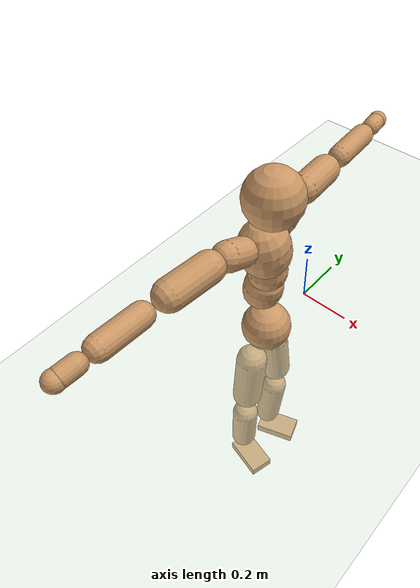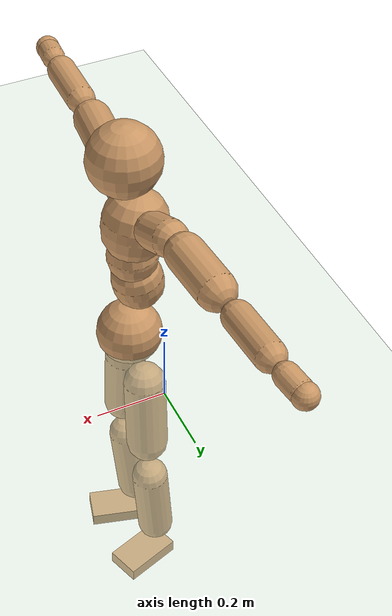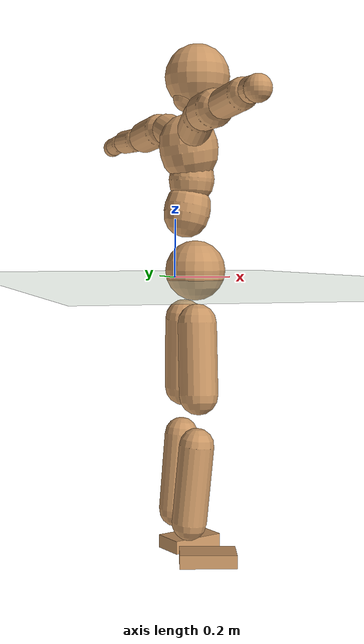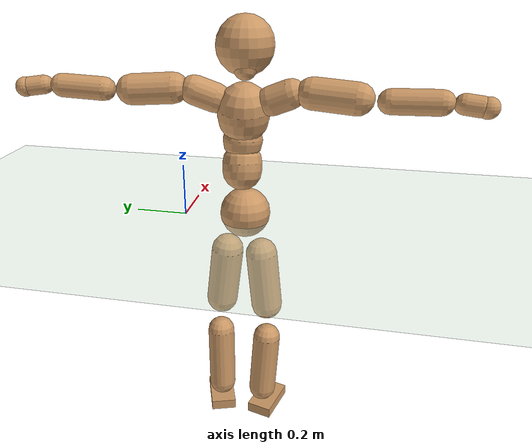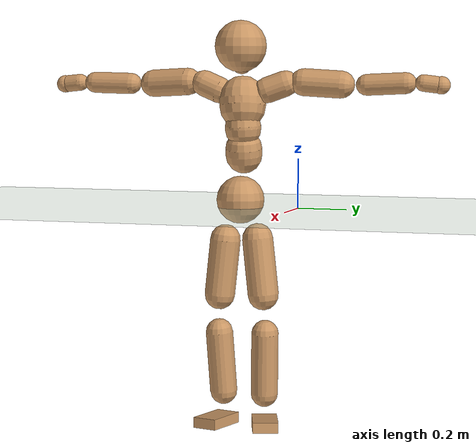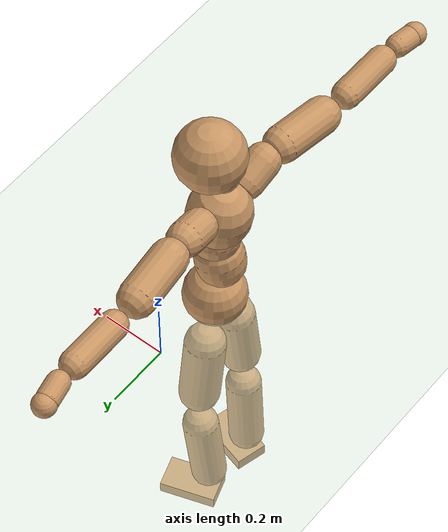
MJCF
<mujoco model="humanoid">
  <compiler coordinate="local"/>
  <default>
    <joint damping="0.0" armature="0.01" stiffness="0.0" limited="true"/>
    <geom conaffinity="1" condim="3" contype="7" margin="0.001" rgba="0.8 0.6 .4 1"/>
  </default>
  <asset>
    <texture type="skybox" builtin="gradient" rgb1=".4 .5 .6" rgb2="0 0 0" width="100" height="100"/>
    <texture builtin="flat" height="1278" mark="cross" markrgb="1 1 1" name="texgeom" random="0.01" rgb1="0.8 0.6 0.4" rgb2="0.8 0.6 0.4" type="cube" width="127"/>
    <texture builtin="checker" height="100" name="texplane" rgb1="0 0 0" rgb2="0.8 0.8 0.8" type="2d" width="100"/>
    <material name="MatPlane" reflectance="0.5" shininess="1" specular="1" texrepeat="60 60" texture="texplane"/>
    <material name="geom" texture="texgeom" texuniform="true"/>
  </asset>
  <worldbody>
    <light cutoff="100" diffuse="1 1 1" dir="-0 0 -1.3" directional="true" exponent="1" pos="0 0 1.3" specular=".1 .1 .1"/>
    <geom conaffinity="1" condim="3" name="floor" pos="0 0 0" rgba="0.8 0.9 0.8 1" size="100 100 .2" type="plane" material="MatPlane"/>
    <body name="Pelvis" pos="-0.0024 -0.2434 0.0287">
      <freejoint name="Pelvis"/>
      <geom type="sphere" contype="1" conaffinity="1" density="500" size="0.0970" pos="0.0000 0.0000 0.0000" name="Pelvis"/>
      <body name="L_Hip" pos="-0.018 0.0591 -0.0824">
        <joint name="L_Hip_x" type="hinge" pos="0 0 0" axis="1 0 0" stiffness="800" damping="80" armature="0.02" range="-180.0000 180.0000"/>
        <joint name="L_Hip_y" type="hinge" pos="0 0 0" axis="0 1 0" stiffness="800" damping="80" armature="0.02" range="-180.0000 180.0000"/>
        <joint name="L_Hip_z" type="hinge" pos="0 0 0" axis="0 0 1" stiffness="800" damping="80" armature="0.02" range="-180.0000 180.0000"/>
        <geom type="capsule" contype="1" conaffinity="1" density="500" fromto="0.0017 0.0086 -0.0764 0.0067 0.0344 -0.3058" size="0.0628" name="L_Hip"/>
        <body name="L_Knee" pos="0.0083 0.043 -0.3822">
          <joint name="L_Knee_x" type="hinge" pos="0 0 0" axis="1 0 0" stiffness="800" damping="80" armature="0.02" range="-180.0000 180.0000"/>
          <joint name="L_Knee_y" type="hinge" pos="0 0 0" axis="0 1 0" stiffness="800" damping="80" armature="0.02" range="-180.0000 180.0000"/>
          <joint name="L_Knee_z" type="hinge" pos="0 0 0" axis="0 0 1" stiffness="800" damping="80" armature="0.02" range="-180.0000 180.0000"/>
          <geom type="capsule" contype="1" conaffinity="1" density="500" fromto="-0.0075 -0.0030 -0.0843 -0.0300 -0.0118 -0.3373" size="0.0556" name="L_Knee"/>
          <body name="L_Ankle" pos="-0.0374 -0.0148 -0.4216">
            <joint name="L_Ankle_x" type="hinge" pos="0 0 0" axis="1 0 0" stiffness="800" damping="80" armature="0.02" range="-180.0000 180.0000"/>
            <joint name="L_Ankle_y" type="hinge" pos="0 0 0" axis="0 1 0" stiffness="800" damping="80" armature="0.02" range="-180.0000 180.0000"/>
            <joint name="L_Ankle_z" type="hinge" pos="0 0 0" axis="0 0 1" stiffness="800" damping="80" armature="0.02" range="-180.0000 180.0000"/>
            <geom type="box" contype="1" conaffinity="1" density="500" pos="0.0609 0.0203 -0.0299" size="0.089 0.052 0.0215" quat="0.9871 0.0000 0.0000 0.1602" name="L_Ankle"/>
            <body name="L_Toe" pos="0.1218 0.0406 -0.0599">
              <joint name="L_Toe_x" type="hinge" pos="0 0 0" axis="1 0 0" stiffness="500" damping="50" armature="0.02" range="-180.0000 180.0000"/>
              <joint name="L_Toe_y" type="hinge" pos="0 0 0" axis="0 1 0" stiffness="500" damping="50" armature="0.02" range="-180.0000 180.0000"/>
              <joint name="L_Toe_z" type="hinge" pos="0 0 0" axis="0 0 1" stiffness="500" damping="50" armature="0.02" range="-180.0000 180.0000"/>
              <geom type="box" contype="1" conaffinity="1" density="500" pos="0.0000 0.0000 0.0290" size="0.0011 0.0025 0.001" quat="0.9863 0.0000 0.0000 0.1650" name="L_Toe"/>
            </body>
          </body>
        </body>
      </body>
      <body name="R_Hip" pos="-0.0139 -0.0608 -0.0905">
        <joint name="R_Hip_x" type="hinge" pos="0 0 0" axis="1 0 0" stiffness="800" damping="80" armature="0.02" range="-180.0000 180.0000"/>
        <joint name="R_Hip_y" type="hinge" pos="0 0 0" axis="0 1 0" stiffness="800" damping="80" armature="0.02" range="-180.0000 180.0000"/>
        <joint name="R_Hip_z" type="hinge" pos="0 0 0" axis="0 0 1" stiffness="800" damping="80" armature="0.02" range="-180.0000 180.0000"/>
        <geom type="capsule" contype="1" conaffinity="1" density="500" fromto="-0.0009 -0.0085 -0.0758 -0.0037 -0.0340 -0.3034" size="0.0622" name="R_Hip"/>
        <body name="R_Knee" pos="-0.0046 -0.0424 -0.3792">
          <joint name="R_Knee_x" type="hinge" pos="0 0 0" axis="1 0 0" stiffness="800" damping="80" armature="0.02" range="-180.0000 180.0000"/>
          <joint name="R_Knee_y" type="hinge" pos="0 0 0" axis="0 1 0" stiffness="800" damping="80" armature="0.02" range="-180.0000 180.0000"/>
          <joint name="R_Knee_z" type="hinge" pos="0 0 0" axis="0 0 1" stiffness="800" damping="80" armature="0.02" range="-180.0000 180.0000"/>
          <geom type="capsule" contype="1" conaffinity="1" density="500" fromto="-0.0070 0.0038 -0.0829 -0.0279 0.0152 -0.3316" size="0.0558" name="R_Knee"/>
          <body name="R_Ankle" pos="-0.0348 0.019 -0.4145">
            <joint name="R_Ankle_x" type="hinge" pos="0 0 0" axis="1 0 0" stiffness="800" damping="80" armature="0.02" range="-180.0000 180.0000"/>
            <joint name="R_Ankle_y" type="hinge" pos="0 0 0" axis="0 1 0" stiffness="800" damping="80" armature="0.02" range="-180.0000 180.0000"/>
            <joint name="R_Ankle_z" type="hinge" pos="0 0 0" axis="0 0 1" stiffness="800" damping="80" armature="0.02" range="-180.0000 180.0000"/>
            <geom type="box" contype="1" conaffinity="1" density="500" pos="0.0651 -0.0174 -0.0305" size="0.0908 0.0513 0.0218" quat="0.9915 0.0000 0.0000 -0.1304" name="R_Ankle"/>
            <body name="R_Toe" pos="0.1303 -0.0349 -0.0611">
              <joint name="R_Toe_x" type="hinge" pos="0 0 0" axis="1 0 0" stiffness="500" damping="50" armature="0.02" range="-180.0000 180.0000"/>
              <joint name="R_Toe_y" type="hinge" pos="0 0 0" axis="0 1 0" stiffness="500" damping="50" armature="0.02" range="-180.0000 180.0000"/>
              <joint name="R_Toe_z" type="hinge" pos="0 0 0" axis="0 0 1" stiffness="500" damping="50" armature="0.02" range="-180.0000 180.0000"/>
              <geom type="box" contype="1" conaffinity="1" density="500" pos="0.0000 0.0000 0.0304" size="0.0011 0.0025 0.0011" quat="0.9926 0.0000 0.0000 -0.1215" name="R_Toe"/>
            </body>
          </body>
        </body>
      </body>
      <body name="Torso" pos="-0.0389 0.0043 0.1245">
        <joint name="Torso_x" type="hinge" pos="0 0 0" axis="1 0 0" stiffness="1000" damping="100" armature="0.02" range="-180.0000 180.0000"/>
        <joint name="Torso_y" type="hinge" pos="0 0 0" axis="0 1 0" stiffness="1000" damping="100" armature="0.02" range="-180.0000 180.0000"/>
        <joint name="Torso_z" type="hinge" pos="0 0 0" axis="0 0 1" stiffness="1000" damping="100" armature="0.02" range="-180.0000 180.0000"/>
        <geom type="capsule" contype="1" conaffinity="1" density="500" fromto="0.0162 0.0027 0.0836 0.0108 0.0018 0.0558" size="0.074493" name="Torso"/>
        <body name="Spine" pos="0.027 0.0046 0.1394">
          <joint name="Spine_x" type="hinge" pos="0 0 0" axis="1 0 0" stiffness="1000" damping="100" armature="0.02" range="-180.0000 180.0000"/>
          <joint name="Spine_y" type="hinge" pos="0 0 0" axis="0 1 0" stiffness="1000" damping="100" armature="0.02" range="-180.0000 180.0000"/>
          <joint name="Spine_z" type="hinge" pos="0 0 0" axis="0 0 1" stiffness="1000" damping="100" armature="0.02" range="-180.0000 180.0000"/>
          <geom type="capsule" contype="1" conaffinity="1" density="500" fromto="0.0019 -0.0013 0.0341 0.0013 -0.0009 0.0227" size="0.07347" name="Spine"/>
          <body name="Chest" pos="0.0032 -0.0021 0.0568">
            <joint name="Chest_x" type="hinge" pos="0 0 0" axis="1 0 0" stiffness="1000" damping="100" armature="0.02" range="-180.0000 180.0000"/>
            <joint name="Chest_y" type="hinge" pos="0 0 0" axis="0 1 0" stiffness="1000" damping="100" armature="0.02" range="-180.0000 180.0000"/>
            <joint name="Chest_z" type="hinge" pos="0 0 0" axis="0 0 1" stiffness="1000" damping="100" armature="0.02" range="-180.0000 180.0000"/>
            <geom type="capsule" contype="1" conaffinity="1" density="500" fromto="-0.0152 -0.0048 0.0875 -0.0101 -0.0032 0.0583" size="0.094395" name="Chest"/>
            <body name="Neck" pos="-0.0339 -0.0132 0.2115">
              <joint name="Neck_x" type="hinge" pos="0 0 0" axis="1 0 0" stiffness="500" damping="50" armature="0.02" range="-180.0000 180.0000"/>
              <joint name="Neck_y" type="hinge" pos="0 0 0" axis="0 1 0" stiffness="500" damping="50" armature="0.02" range="-180.0000 180.0000"/>
              <joint name="Neck_z" type="hinge" pos="0 0 0" axis="0 0 1" stiffness="500" damping="50" armature="0.02" range="-180.0000 180.0000"/>
              <geom type="capsule" contype="1" conaffinity="1" density="500" fromto="0.0100 0.0020 0.0177 0.0399 0.0082 0.0709" size="0.042222" name="Neck"/>
              <body name="Head" pos="0.0499 0.0102 0.0886">
                <joint name="Head_x" type="hinge" pos="0 0 0" axis="1 0 0" stiffness="500" damping="50" armature="0.02" range="-180.0000 180.0000"/>
                <joint name="Head_y" type="hinge" pos="0 0 0" axis="0 1 0" stiffness="500" damping="50" armature="0.02" range="-180.0000 180.0000"/>
                <joint name="Head_z" type="hinge" pos="0 0 0" axis="0 0 1" stiffness="500" damping="50" armature="0.02" range="-180.0000 180.0000"/>
                <geom type="sphere" contype="1" conaffinity="1" density="500" size="0.1047" pos="0.0000 0.0000 0.0000" name="Head"/>
              </body>
            </body>
            <body name="L_Thorax" pos="-0.0185 0.0713 0.1139">
              <joint name="L_Thorax_x" type="hinge" pos="0 0 0" axis="1 0 0" stiffness="500" damping="50" armature="0.02" range="-180.0000 180.0000"/>
              <joint name="L_Thorax_y" type="hinge" pos="0 0 0" axis="0 1 0" stiffness="500" damping="50" armature="0.02" range="-180.0000 180.0000"/>
              <joint name="L_Thorax_z" type="hinge" pos="0 0 0" axis="0 0 1" stiffness="500" damping="50" armature="0.02" range="-180.0000 180.0000"/>
              <geom type="capsule" contype="1" conaffinity="1" density="500" fromto="-0.0038 0.0246 0.0090 -0.0150 0.0982 0.0361" size="0.053" name="L_Thorax"/>
              <body name="L_Shoulder" pos="-0.0188 0.1228 0.0451">
                <joint name="L_Shoulder_x" type="hinge" pos="0 0 0" axis="1 0 0" stiffness="500" damping="50" armature="0.02" range="-720.0000 720.0000"/>
                <joint name="L_Shoulder_y" type="hinge" pos="0 0 0" axis="0 1 0" stiffness="500" damping="50" armature="0.02" range="-720.0000 720.0000"/>
                <joint name="L_Shoulder_z" type="hinge" pos="0 0 0" axis="0 0 1" stiffness="500" damping="50" armature="0.02" range="-720.0000 720.0000"/>
                <geom type="capsule" contype="1" conaffinity="1" density="500" fromto="-0.0046 0.0504 -0.0031 -0.0184 0.2015 -0.0123" size="0.0555" name="L_Shoulder"/>
                <body name="L_Elbow" pos="-0.023 0.2519 -0.0153">
                  <joint name="L_Elbow_x" type="hinge" pos="0 0 0" axis="1 0 0" stiffness="500" damping="50" armature="0.02" range="-720.0000 720.0000"/>
                  <joint name="L_Elbow_y" type="hinge" pos="0 0 0" axis="0 1 0" stiffness="500" damping="50" armature="0.02" range="-720.0000 720.0000"/>
                  <joint name="L_Elbow_z" type="hinge" pos="0 0 0" axis="0 0 1" stiffness="500" damping="50" armature="0.02" range="-720.0000 720.0000"/>
                  <geom type="capsule" contype="1" conaffinity="1" density="500" fromto="-0.0014 0.0528 0.0026 -0.0056 0.2112 0.0102" size="0.0428" name="L_Elbow"/>
                  <body name="L_Wrist" pos="-0.007 0.264 0.0128">
                    <joint name="L_Wrist_x" type="hinge" pos="0 0 0" axis="1 0 0" stiffness="300" damping="30" armature="0.02" range="-180.0000 180.0000"/>
                    <joint name="L_Wrist_y" type="hinge" pos="0 0 0" axis="0 1 0" stiffness="300" damping="30" armature="0.02" range="-180.0000 180.0000"/>
                    <joint name="L_Wrist_z" type="hinge" pos="0 0 0" axis="0 0 1" stiffness="300" damping="30" armature="0.02" range="-180.0000 180.0000"/>
                    <geom type="capsule" contype="1" conaffinity="1" density="500" fromto="-0.0031 0.0174 -0.0021 -0.0125 0.0695 -0.0086" size="0.0342" name="L_Wrist"/>
                    <body name="L_Hand" pos="-0.0156 0.0869 -0.0107">
                      <joint name="L_Hand_x" type="hinge" pos="0 0 0" axis="1 0 0" stiffness="300" damping="30" armature="0.02" range="-180.0000 180.0000"/>
                      <joint name="L_Hand_y" type="hinge" pos="0 0 0" axis="0 1 0" stiffness="300" damping="30" armature="0.02" range="-180.0000 180.0000"/>
                      <joint name="L_Hand_z" type="hinge" pos="0 0 0" axis="0 0 1" stiffness="300" damping="30" armature="0.02" range="-180.0000 180.0000"/>
                      <geom type="sphere" contype="1" conaffinity="1" density="500" size="0.0357" pos="0.0000 0.0000 0.0000" name="L_Hand"/>
                    </body>
                  </body>
                </body>
              </body>
            </body>
            <body name="R_Thorax" pos="-0.0237 -0.0824 0.1121">
              <joint name="R_Thorax_x" type="hinge" pos="0 0 0" axis="1 0 0" stiffness="500" damping="50" armature="0.02" range="-180.0000 180.0000"/>
              <joint name="R_Thorax_y" type="hinge" pos="0 0 0" axis="0 1 0" stiffness="500" damping="50" armature="0.02" range="-180.0000 180.0000"/>
              <joint name="R_Thorax_z" type="hinge" pos="0 0 0" axis="0 0 1" stiffness="500" damping="50" armature="0.02" range="-180.0000 180.0000"/>
              <geom type="capsule" contype="1" conaffinity="1" density="500" fromto="-0.0017 -0.0226 0.0093 -0.0067 -0.0905 0.0373" size="0.0531" name="R_Thorax"/>
              <body name="R_Shoulder" pos="-0.0084 -0.1132 0.0466">
                <joint name="R_Shoulder_x" type="hinge" pos="0 0 0" axis="1 0 0" stiffness="500" damping="50" armature="0.02" range="-720.0000 720.0000"/>
                <joint name="R_Shoulder_y" type="hinge" pos="0 0 0" axis="0 1 0" stiffness="500" damping="50" armature="0.02" range="-720.0000 720.0000"/>
                <joint name="R_Shoulder_z" type="hinge" pos="0 0 0" axis="0 0 1" stiffness="500" damping="50" armature="0.02" range="-720.0000 720.0000"/>
                <geom type="capsule" contype="1" conaffinity="1" density="500" fromto="-0.0064 -0.0514 -0.0028 -0.0254 -0.2057 -0.0112" size="0.0561" name="R_Shoulder"/>
                <body name="R_Elbow" pos="-0.0318 -0.2571 -0.0141">
                  <joint name="R_Elbow_x" type="hinge" pos="0 0 0" axis="1 0 0" stiffness="500" damping="50" armature="0.02" range="-720.0000 720.0000"/>
                  <joint name="R_Elbow_y" type="hinge" pos="0 0 0" axis="0 1 0" stiffness="500" damping="50" armature="0.02" range="-720.0000 720.0000"/>
                  <joint name="R_Elbow_z" type="hinge" pos="0 0 0" axis="0 0 1" stiffness="500" damping="50" armature="0.02" range="-720.0000 720.0000"/>
                  <geom type="capsule" contype="1" conaffinity="1" density="500" fromto="-0.0011 -0.0534 0.0012 -0.0045 -0.2135 0.0050" size="0.0434" name="R_Elbow"/>
                  <body name="R_Wrist" pos="-0.0057 -0.2669 0.0062">
                    <joint name="R_Wrist_x" type="hinge" pos="0 0 0" axis="1 0 0" stiffness="300" damping="30" armature="0.02" range="-180.0000 180.0000"/>
                    <joint name="R_Wrist_y" type="hinge" pos="0 0 0" axis="0 1 0" stiffness="300" damping="30" armature="0.02" range="-180.0000 180.0000"/>
                    <joint name="R_Wrist_z" type="hinge" pos="0 0 0" axis="0 0 1" stiffness="300" damping="30" armature="0.02" range="-180.0000 180.0000"/>
                    <geom type="capsule" contype="1" conaffinity="1" density="500" fromto="-0.0020 -0.0178 -0.0017 -0.0081 -0.0711 -0.0069" size="0.0349" name="R_Wrist"/>
                    <body name="R_Hand" pos="-0.0101 -0.0888 -0.0087">
                      <joint name="R_Hand_x" type="hinge" pos="0 0 0" axis="1 0 0" stiffness="300" damping="30" armature="0.02" range="-180.0000 180.0000"/>
                      <joint name="R_Hand_y" type="hinge" pos="0 0 0" axis="0 1 0" stiffness="300" damping="30" armature="0.02" range="-180.0000 180.0000"/>
                      <joint name="R_Hand_z" type="hinge" pos="0 0 0" axis="0 0 1" stiffness="300" damping="30" armature="0.02" range="-180.0000 180.0000"/>
                      <geom type="sphere" contype="1" conaffinity="1" density="500" size="0.0361" pos="0.0000 0.0000 0.0000" name="R_Hand"/>
                    </body>
                  </body>
                </body>
              </body>
            </body>
          </body>
        </body>
      </body>
    </body>
  </worldbody>
  <actuator>
    <motor name="L_Hip_x" joint="L_Hip_x" gear="500"/>
    <motor name="L_Hip_y" joint="L_Hip_y" gear="500"/>
    <motor name="L_Hip_z" joint="L_Hip_z" gear="500"/>
    <motor name="L_Knee_x" joint="L_Knee_x" gear="500"/>
    <motor name="L_Knee_y" joint="L_Knee_y" gear="500"/>
    <motor name="L_Knee_z" joint="L_Knee_z" gear="500"/>
    <motor name="L_Ankle_x" joint="L_Ankle_x" gear="500"/>
    <motor name="L_Ankle_y" joint="L_Ankle_y" gear="500"/>
    <motor name="L_Ankle_z" joint="L_Ankle_z" gear="500"/>
    <motor name="L_Toe_x" joint="L_Toe_x" gear="500"/>
    <motor name="L_Toe_y" joint="L_Toe_y" gear="500"/>
    <motor name="L_Toe_z" joint="L_Toe_z" gear="500"/>
    <motor name="R_Hip_x" joint="R_Hip_x" gear="500"/>
    <motor name="R_Hip_y" joint="R_Hip_y" gear="500"/>
    <motor name="R_Hip_z" joint="R_Hip_z" gear="500"/>
    <motor name="R_Knee_x" joint="R_Knee_x" gear="500"/>
    <motor name="R_Knee_y" joint="R_Knee_y" gear="500"/>
    <motor name="R_Knee_z" joint="R_Knee_z" gear="500"/>
    <motor name="R_Ankle_x" joint="R_Ankle_x" gear="500"/>
    <motor name="R_Ankle_y" joint="R_Ankle_y" gear="500"/>
    <motor name="R_Ankle_z" joint="R_Ankle_z" gear="500"/>
    <motor name="R_Toe_x" joint="R_Toe_x" gear="500"/>
    <motor name="R_Toe_y" joint="R_Toe_y" gear="500"/>
    <motor name="R_Toe_z" joint="R_Toe_z" gear="500"/>
    <motor name="Torso_x" joint="Torso_x" gear="500"/>
    <motor name="Torso_y" joint="Torso_y" gear="500"/>
    <motor name="Torso_z" joint="Torso_z" gear="500"/>
    <motor name="Spine_x" joint="Spine_x" gear="500"/>
    <motor name="Spine_y" joint="Spine_y" gear="500"/>
    <motor name="Spine_z" joint="Spine_z" gear="500"/>
    <motor name="Chest_x" joint="Chest_x" gear="500"/>
    <motor name="Chest_y" joint="Chest_y" gear="500"/>
    <motor name="Chest_z" joint="Chest_z" gear="500"/>
    <motor name="Neck_x" joint="Neck_x" gear="500"/>
    <motor name="Neck_y" joint="Neck_y" gear="500"/>
    <motor name="Neck_z" joint="Neck_z" gear="500"/>
    <motor name="Head_x" joint="Head_x" gear="500"/>
    <motor name="Head_y" joint="Head_y" gear="500"/>
    <motor name="Head_z" joint="Head_z" gear="500"/>
    <motor name="L_Thorax_x" joint="L_Thorax_x" gear="500"/>
    <motor name="L_Thorax_y" joint="L_Thorax_y" gear="500"/>
    <motor name="L_Thorax_z" joint="L_Thorax_z" gear="500"/>
    <motor name="L_Shoulder_x" joint="L_Shoulder_x" gear="500"/>
    <motor name="L_Shoulder_y" joint="L_Shoulder_y" gear="500"/>
    <motor name="L_Shoulder_z" joint="L_Shoulder_z" gear="500"/>
    <motor name="L_Elbow_x" joint="L_Elbow_x" gear="500"/>
    <motor name="L_Elbow_y" joint="L_Elbow_y" gear="500"/>
    <motor name="L_Elbow_z" joint="L_Elbow_z" gear="500"/>
    <motor name="L_Wrist_x" joint="L_Wrist_x" gear="500"/>
    <motor name="L_Wrist_y" joint="L_Wrist_y" gear="500"/>
    <motor name="L_Wrist_z" joint="L_Wrist_z" gear="500"/>
    <motor name="L_Hand_x" joint="L_Hand_x" gear="500"/>
    <motor name="L_Hand_y" joint="L_Hand_y" gear="500"/>
    <motor name="L_Hand_z" joint="L_Hand_z" gear="500"/>
    <motor name="R_Thorax_x" joint="R_Thorax_x" gear="500"/>
    <motor name="R_Thorax_y" joint="R_Thorax_y" gear="500"/>
    <motor name="R_Thorax_z" joint="R_Thorax_z" gear="500"/>
    <motor name="R_Shoulder_x" joint="R_Shoulder_x" gear="500"/>
    <motor name="R_Shoulder_y" joint="R_Shoulder_y" gear="500"/>
    <motor name="R_Shoulder_z" joint="R_Shoulder_z" gear="500"/>
    <motor name="R_Elbow_x" joint="R_Elbow_x" gear="500"/>
    <motor name="R_Elbow_y" joint="R_Elbow_y" gear="500"/>
    <motor name="R_Elbow_z" joint="R_Elbow_z" gear="500"/>
    <motor name="R_Wrist_x" joint="R_Wrist_x" gear="500"/>
    <motor name="R_Wrist_y" joint="R_Wrist_y" gear="500"/>
    <motor name="R_Wrist_z" joint="R_Wrist_z" gear="500"/>
    <motor name="R_Hand_x" joint="R_Hand_x" gear="500"/>
    <motor name="R_Hand_y" joint="R_Hand_y" gear="500"/>
    <motor name="R_Hand_z" joint="R_Hand_z" gear="500"/>
  </actuator>
  <contact>
    <exclude body1="Torso" body2="Chest"/>
    <exclude body1="Head" body2="Chest"/>
    <exclude body1="R_Knee" body2="R_Toe"/>
    <exclude body1="R_Knee" body2="L_Ankle"/>
    <exclude body1="R_Knee" body2="L_Toe"/>
    <exclude body1="L_Knee" body2="L_Toe"/>
    <exclude body1="L_Knee" body2="R_Ankle"/>
    <exclude body1="L_Knee" body2="R_Toe"/>
    <exclude body1="L_Shoulder" body2="Chest"/>
    <exclude body1="R_Shoulder" body2="Chest"/>
  </contact>
  <sensor/>
  <size njmax="700" nconmax="700"/>
</mujoco>
